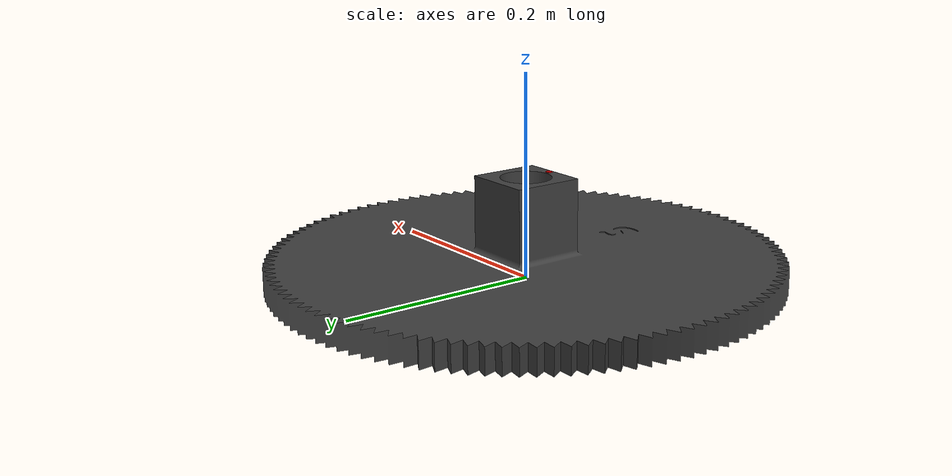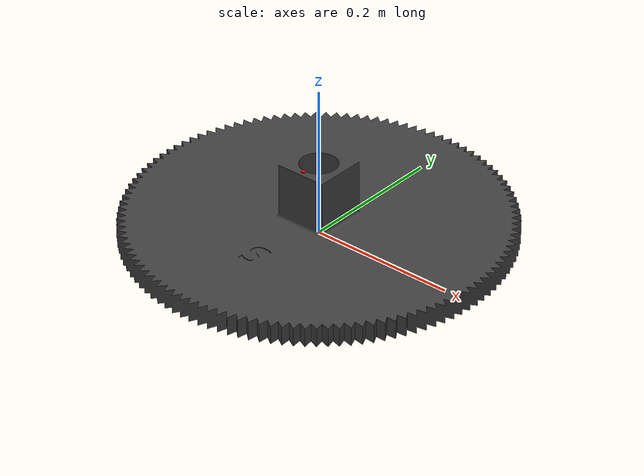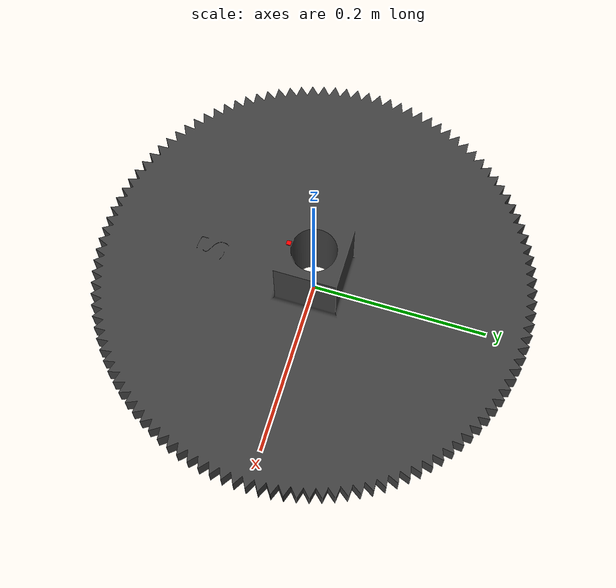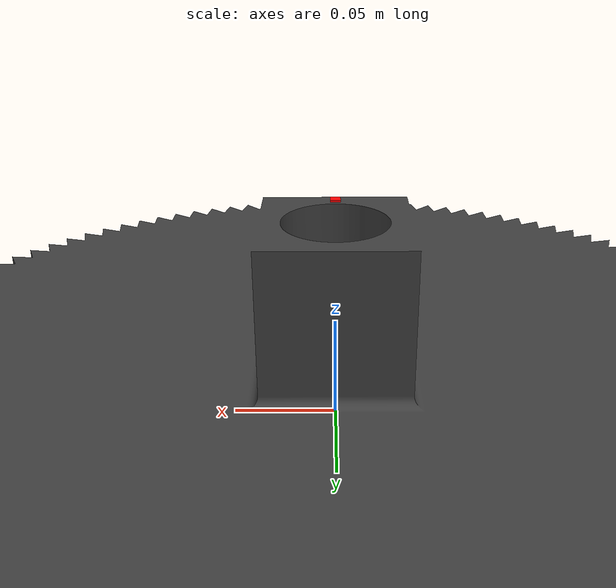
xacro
<?xml version="1.0" ?>
<robot name="starter_gear" xmlns:xacro="http://wiki.ros.org/xacro" >

    <link name="starter_gear">
        <visual>
            <origin rpy="0 0 0" xyz="0 0 0"/>
            <geometry>
                <mesh filename="file://$(find sirgas_description)/meshes/Starter_Gear.stl" />
            </geometry>
            <material name="DarkGrey">
                <color rgba="0.25 0.25 0.25 1.0" />
            </material>
        </visual>
        <collision>
            <origin rpy="0 0 0" xyz="0 0 0"/>
            <geometry>
                <mesh filename="file://$(find sirgas_description)/meshes/Starter_Gear.stl" />
            </geometry>
        </collision>
        <inertial>
            <mass value="4.903"/>
            <origin rpy="0 0 0" xyz="0 0 0"/>
            <inertia ixx="0.0731301" ixy="0.0" ixz="0.0" iyx="0.0" iyy="0.073" iyz="0.0" izx="0.0" izy= "0.0" izz="0.14570353"/>
        </inertial>
    </link>

    <!-- Liner Info -->
    <link name="liner2">
        <visual>
            <origin rpy="0 0 0" xyz="0 0 0"/>
            <geometry>
                <box size="0.005 0.005 0.001"/>
            </geometry>
            <material name="Red">
                <color rgba="1.0 0 0 1.0" />
            </material>
        </visual>
    </link>

    <joint name="liner2_pbs" type="fixed">
        <parent link="starter_gear"/>
        <child link="liner2"/>
        <origin rpy="0 0 0" xyz="0.0 -0.028 0.101"/>
        <axis xyz="0 0 1"/>
    </joint>

</robot>
